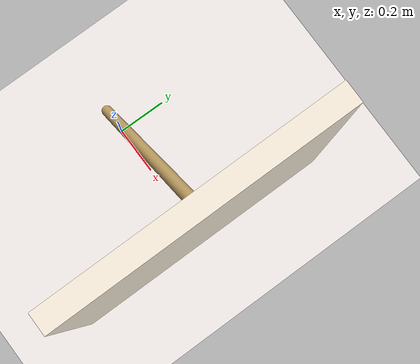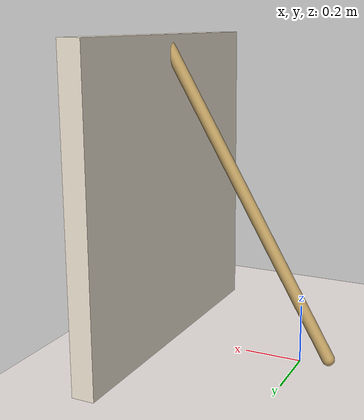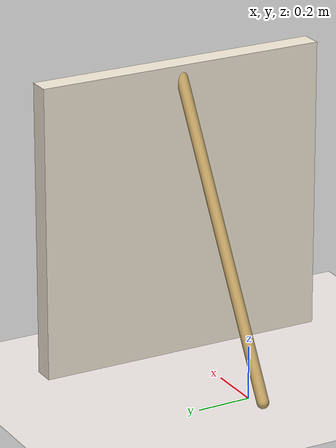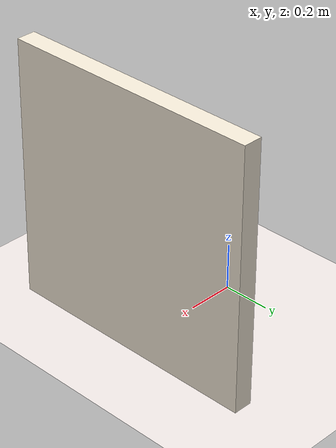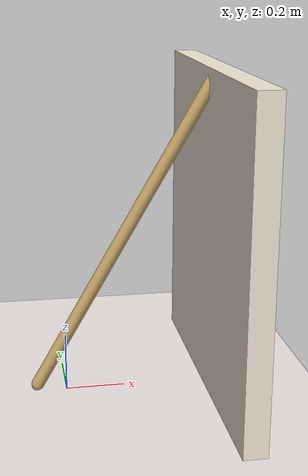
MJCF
<mujoco model="ladder_slipping_off_wall">
  <!-- A 1.2 m ladder leans at 60° against a vertical wall (x = 0.5).
       Low floor friction (mu = 0.15) lets the foot slip outward and the top
       slide down the wall. -->
  <compiler angle="radian" coordinate="local" autolimits="true"/>
  <option timestep="0.001" gravity="0 0 -9.81" integrator="implicitfast"
          impratio="3" cone="elliptic"/>

  <visual>
    <headlight diffuse="0 0 0" ambient="0.50 0.48 0.55" specular="0 0 0"/>
    <rgba haze="0.94 0.91 0.90 1"/>
    <global azimuth="120" elevation="-15" offwidth="1920" offheight="1080" fovy="38"/>
    <quality shadowsize="8192" offsamples="8"/>
    <map shadowclip="6" shadowscale="0.7"/>
  </visual>

  <asset>
    <texture type="skybox" builtin="flat"
             rgb1="0.74 0.68 0.86" rgb2="0.74 0.68 0.86"
             width="512" height="512" mark="none" markrgb="0 0 0"/>

    <material name="floor_mat" rgba="0.94 0.91 0.90 1" specular="0" shininess="0"/>
    <material name="wall_mat" rgba="0.96 0.92 0.85 1" specular="0.05" shininess="0.05"/>
    <material name="ladder_mat" rgba="0.78 0.65 0.40 1" specular="0.1" shininess="0.15"/>
  </asset>

  <worldbody>
    <light pos="0 0 12" dir="-0.30 0.55 -1" directional="true" castshadow="true"
           diffuse="0.85 0.82 0.78" specular="0.15 0.15 0.15"/>
    <light pos="0 0 8" dir="0.40 -0.30 -1" directional="true" castshadow="false"
           diffuse="0.28 0.28 0.34" specular="0 0 0"/>

    <!-- Low-friction floor -->
    <geom name="floor" type="plane" size="40 40 0.1" material="floor_mat"
          friction="0.15 0.005 0.0001"/>

    <!-- Vertical wall at x = 0.5 (height matches ladder contact region) -->
    <geom name="wall" type="box" size="0.04 0.55 0.55" pos="0.52 0 0.55"
          material="wall_mat" friction="0.15 0.005 0.0001"/>

    <!-- Ladder: foot at (-0.10, 0, 0.025), top touches wall at z ≈ 1.04.
         Length 1.2 m, angle 60° above horizontal. -->
    <body name="ladder" pos="-0.10 0 0.025">
      <joint type="free"/>
      <geom name="rail" type="capsule"
            fromto="0 0 0  0.60 0 1.039"
            size="0.022" mass="2.2" material="ladder_mat"
            friction="0.15 0.005 0.0001"/>
    </body>

    <!-- Side view: pull back so ladder + wall fit at t=0 -->
    <camera name="cam" pos="0.20 -5.5 0.45" fovy="48"
            xyaxes="1 0 0  0 0.05 0.998"/>
  </worldbody>
</mujoco>
